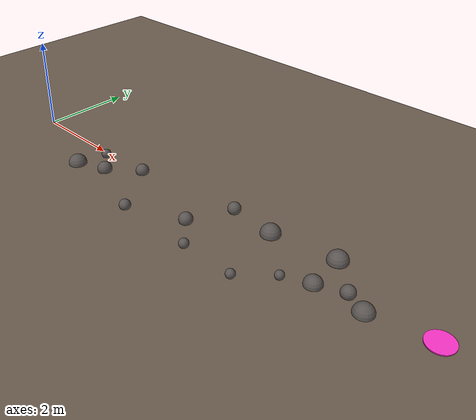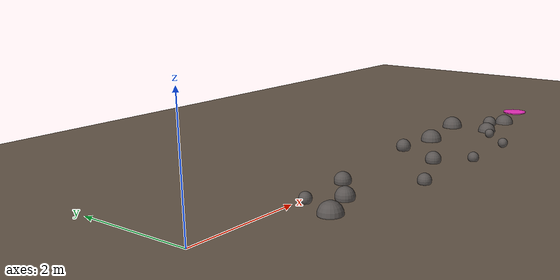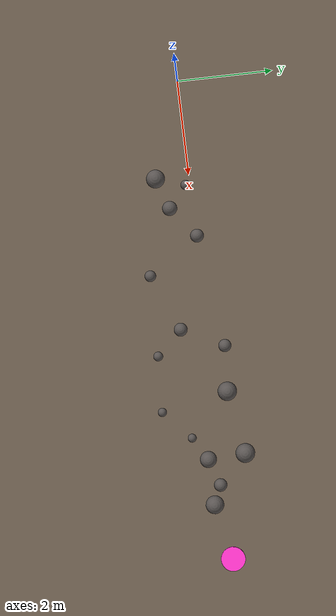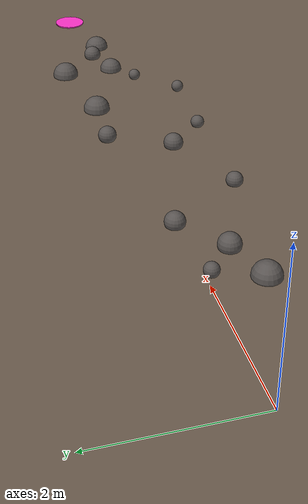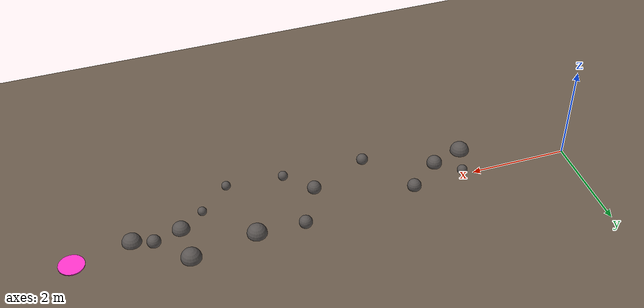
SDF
<?xml version="1.0"?>
<!-- GENERATED by scripts/make_test_worlds.py - scenario 'big_rocks': 15 rocks 15-21 cm high (above the 17 cm comfort step, below the 23 cm climbing step): drive over. -->
<sdf version="1.9">
  <world name="vigil_rock_terrain">
    <gravity>0 0 -9.81</gravity>
    <physics name="physics" type="ignored"><max_step_size>0.001</max_step_size><real_time_factor>1</real_time_factor></physics>
    <plugin filename="gz-sim-physics-system" name="gz::sim::systems::Physics"><engine><filename>gz-physics-dartsim-plugin</filename></engine></plugin>
    <plugin filename="gz-sim-contact-system" name="gz::sim::systems::Contact"/>
    <plugin filename="gz-sim-user-commands-system" name="gz::sim::systems::UserCommands"/>
    <plugin filename="gz-sim-scene-broadcaster-system" name="gz::sim::systems::SceneBroadcaster"/>
    <plugin filename="gz-sim-sensors-system" name="gz::sim::systems::Sensors"><render_engine>ogre2</render_engine></plugin>
    <plugin filename="gz-sim-imu-system" name="gz::sim::systems::Imu"/>
    <scene><ambient>0.5 0.5 0.5 1</ambient><background>0.70 0.80 0.90 1</background><shadows>true</shadows><grid>false</grid></scene>
    <light name="sun" type="directional"><pose>0 0 20 0 0 0</pose><cast_shadows>true</cast_shadows>
      <diffuse>0.85 0.85 0.85 1</diffuse><specular>0.15 0.15 0.15 1</specular><direction>-0.4 0.2 -0.9</direction></light>
    <model name="ground_plane"><static>true</static>
      <link name="link">
        <collision name="collision"><geometry><plane><normal>0 0 1</normal><size>80 80</size></plane></geometry>
          <surface><friction><ode><mu>1.0</mu><mu2>1.0</mu2></ode></friction></surface></collision>
        <visual name="visual"><geometry><plane><normal>0 0 1</normal><size>80 80</size></plane></geometry>
          <material><ambient>0.42 0.36 0.30 1</ambient><diffuse>0.42 0.36 0.30 1</diffuse></material></visual>
      </link>
      <plugin filename="gz-sim-label-system" name="gz::sim::systems::Label"><label>1</label></plugin>
    </model>
    <model name="rock_0"><static>true</static><pose>8.4695 -0.0824 0.0493 0 0 0</pose>
      <link name="link">
        <collision name="collision"><geometry><sphere><radius>0.1343</radius></sphere></geometry></collision>
        <visual name="visual"><geometry><sphere><radius>0.1343</radius></sphere></geometry>
          <material><ambient>0.35 0.33 0.32 1</ambient><diffuse>0.35 0.33 0.32 1</diffuse></material></visual>
      </link>
      <plugin filename="gz-sim-label-system" name="gz::sim::systems::Label"><label>2</label></plugin>
    </model>
    <model name="rock_1"><static>true</static><pose>3.2926 0.0286 0.0443 0 0 0</pose>
      <link name="link">
        <collision name="collision"><geometry><sphere><radius>0.1409</radius></sphere></geometry></collision>
        <visual name="visual"><geometry><sphere><radius>0.1409</radius></sphere></geometry>
          <material><ambient>0.35 0.33 0.32 1</ambient><diffuse>0.35 0.33 0.32 1</diffuse></material></visual>
      </link>
      <plugin filename="gz-sim-label-system" name="gz::sim::systems::Label"><label>2</label></plugin>
    </model>
    <model name="rock_2"><static>true</static><pose>2.6589 -0.4718 0.0420 0 0 0</pose>
      <link name="link">
        <collision name="collision"><geometry><sphere><radius>0.1556</radius></sphere></geometry></collision>
        <visual name="visual"><geometry><sphere><radius>0.1556</radius></sphere></geometry>
          <material><ambient>0.35 0.33 0.32 1</ambient><diffuse>0.35 0.33 0.32 1</diffuse></material></visual>
      </link>
      <plugin filename="gz-sim-label-system" name="gz::sim::systems::Label"><label>2</label></plugin>
    </model>
    <model name="rock_3"><static>true</static><pose>6.8541 -1.0995 0.0848 0 0 0</pose>
      <link name="link">
        <collision name="collision"><geometry><sphere><radius>0.0909</radius></sphere></geometry></collision>
        <visual name="visual"><geometry><sphere><radius>0.0909</radius></sphere></geometry>
          <material><ambient>0.35 0.33 0.32 1</ambient><diffuse>0.35 0.33 0.32 1</diffuse></material></visual>
      </link>
      <plugin filename="gz-sim-label-system" name="gz::sim::systems::Label"><label>2</label></plugin>
    </model>
    <model name="rock_4"><static>true</static><pose>6.5775 0.2774 0.0100 0 0 0</pose>
      <link name="link">
        <collision name="collision"><geometry><sphere><radius>0.1979</radius></sphere></geometry></collision>
        <visual name="visual"><geometry><sphere><radius>0.1979</radius></sphere></geometry>
          <material><ambient>0.35 0.33 0.32 1</ambient><diffuse>0.35 0.33 0.32 1</diffuse></material></visual>
      </link>
      <plugin filename="gz-sim-label-system" name="gz::sim::systems::Label"><label>2</label></plugin>
    </model>
    <model name="rock_5"><static>true</static><pose>5.6987 -1.0571 0.0518 0 0 0</pose>
      <link name="link">
        <collision name="collision"><geometry><sphere><radius>0.0989</radius></sphere></geometry></collision>
        <visual name="visual"><geometry><sphere><radius>0.0989</radius></sphere></geometry>
          <material><ambient>0.35 0.33 0.32 1</ambient><diffuse>0.35 0.33 0.32 1</diffuse></material></visual>
      </link>
      <plugin filename="gz-sim-label-system" name="gz::sim::systems::Label"><label>2</label></plugin>
    </model>
    <model name="rock_6"><static>true</static><pose>2.2106 -0.0866 0.0606 0 0 0</pose>
      <link name="link">
        <collision name="collision"><geometry><sphere><radius>0.1028</radius></sphere></geometry></collision>
        <visual name="visual"><geometry><sphere><radius>0.1028</radius></sphere></geometry>
          <material><ambient>0.35 0.33 0.32 1</ambient><diffuse>0.35 0.33 0.32 1</diffuse></material></visual>
      </link>
      <plugin filename="gz-sim-label-system" name="gz::sim::systems::Label"><label>2</label></plugin>
    </model>
    <model name="rock_7"><static>true</static><pose>5.6339 0.3367 0.0677 0 0 0</pose>
      <link name="link">
        <collision name="collision"><geometry><sphere><radius>0.1329</radius></sphere></geometry></collision>
        <visual name="visual"><geometry><sphere><radius>0.1329</radius></sphere></geometry>
          <material><ambient>0.35 0.33 0.32 1</ambient><diffuse>0.35 0.33 0.32 1</diffuse></material></visual>
      </link>
      <plugin filename="gz-sim-label-system" name="gz::sim::systems::Label"><label>2</label></plugin>
    </model>
    <model name="rock_8"><static>true</static><pose>5.2013 -0.5324 0.0498 0 0 0</pose>
      <link name="link">
        <collision name="collision"><geometry><sphere><radius>0.1400</radius></sphere></geometry></collision>
        <visual name="visual"><geometry><sphere><radius>0.1400</radius></sphere></geometry>
          <material><ambient>0.35 0.33 0.32 1</ambient><diffuse>0.35 0.33 0.32 1</diffuse></material></visual>
      </link>
      <plugin filename="gz-sim-label-system" name="gz::sim::systems::Label"><label>2</label></plugin>
    </model>
    <model name="rock_9"><static>true</static><pose>7.8815 0.4987 0.0100 0 0 0</pose>
      <link name="link">
        <collision name="collision"><geometry><sphere><radius>0.1997</radius></sphere></geometry></collision>
        <visual name="visual"><geometry><sphere><radius>0.1997</radius></sphere></geometry>
          <material><ambient>0.35 0.33 0.32 1</ambient><diffuse>0.35 0.33 0.32 1</diffuse></material></visual>
      </link>
      <plugin filename="gz-sim-label-system" name="gz::sim::systems::Label"><label>2</label></plugin>
    </model>
    <model name="rock_10"><static>true</static><pose>4.0233 -1.0315 0.0459 0 0 0</pose>
      <link name="link">
        <collision name="collision"><geometry><sphere><radius>0.1178</radius></sphere></geometry></collision>
        <visual name="visual"><geometry><sphere><radius>0.1178</radius></sphere></geometry>
          <material><ambient>0.35 0.33 0.32 1</ambient><diffuse>0.35 0.33 0.32 1</diffuse></material></visual>
      </link>
      <plugin filename="gz-sim-label-system" name="gz::sim::systems::Label"><label>2</label></plugin>
    </model>
    <model name="rock_11"><static>true</static><pose>7.9261 -0.2724 0.0021 0 0 0</pose>
      <link name="link">
        <collision name="collision"><geometry><sphere><radius>0.1720</radius></sphere></geometry></collision>
        <visual name="visual"><geometry><sphere><radius>0.1720</radius></sphere></geometry>
          <material><ambient>0.35 0.33 0.32 1</ambient><diffuse>0.35 0.33 0.32 1</diffuse></material></visual>
      </link>
      <plugin filename="gz-sim-label-system" name="gz::sim::systems::Label"><label>2</label></plugin>
    </model>
    <model name="rock_12"><static>true</static><pose>2.0038 -0.6967 0.0059 0 0 0</pose>
      <link name="link">
        <collision name="collision"><geometry><sphere><radius>0.1950</radius></sphere></geometry></collision>
        <visual name="visual"><geometry><sphere><radius>0.1950</radius></sphere></geometry>
          <material><ambient>0.35 0.33 0.32 1</ambient><diffuse>0.35 0.33 0.32 1</diffuse></material></visual>
      </link>
      <plugin filename="gz-sim-label-system" name="gz::sim::systems::Label"><label>2</label></plugin>
    </model>
    <model name="rock_13"><static>true</static><pose>8.8625 -0.2462 -0.0110 0 0 0</pose>
      <link name="link">
        <collision name="collision"><geometry><sphere><radius>0.1892</radius></sphere></geometry></collision>
        <visual name="visual"><geometry><sphere><radius>0.1892</radius></sphere></geometry>
          <material><ambient>0.35 0.33 0.32 1</ambient><diffuse>0.35 0.33 0.32 1</diffuse></material></visual>
      </link>
      <plugin filename="gz-sim-label-system" name="gz::sim::systems::Label"><label>2</label></plugin>
    </model>
    <model name="rock_14"><static>true</static><pose>7.4496 -0.5525 0.0786 0 0 0</pose>
      <link name="link">
        <collision name="collision"><geometry><sphere><radius>0.0888</radius></sphere></geometry></collision>
        <visual name="visual"><geometry><sphere><radius>0.0888</radius></sphere></geometry>
          <material><ambient>0.35 0.33 0.32 1</ambient><diffuse>0.35 0.33 0.32 1</diffuse></material></visual>
      </link>
      <plugin filename="gz-sim-label-system" name="gz::sim::systems::Label"><label>2</label></plugin>
    </model>
    <!-- goal marker B (visual only) -->
    <model name="goal_B"><static>true</static><pose>10.0 0.0 0.020 0 0 0</pose>
      <link name="link"><visual name="v"><geometry><cylinder><radius>0.25</radius><length>0.02</length></cylinder></geometry>
        <material><ambient>1 0.2 0.8 1</ambient><diffuse>1 0.2 0.8 1</diffuse><emissive>0.6 0.1 0.5 1</emissive></material></visual></link>
    </model>
  </world>
</sdf>
